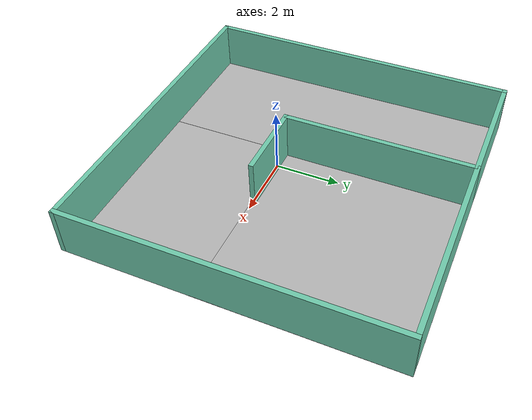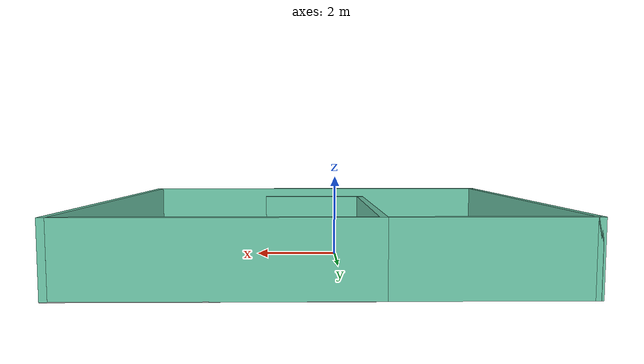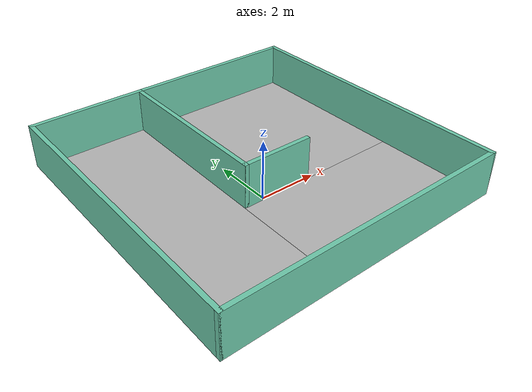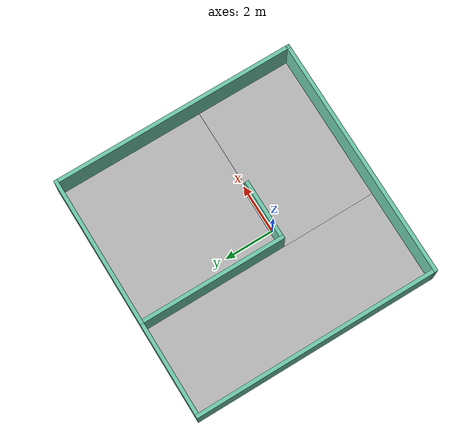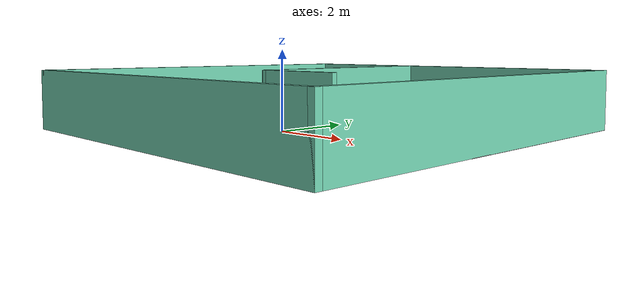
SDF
<?xml version='1.0' encoding='utf-8'?>
<sdf version="1.7">
  <model name="test_room_v2">
    <pose>0.429 0.941 0 0 -0 0</pose>
    <link name="Wall_0">
      <collision name="Wall_0_Collision">
        <geometry>
          <box>
            <size>10 0.15 1.5</size>
          </box>
        </geometry>
        <pose>0 0 0.75 0 -0 0</pose>
      </collision>
      <visual name="Wall_0_Visual">
        <pose>0 0 0.75 0 -0 0</pose>
        <geometry>
          <box>
            <size>10 0.15 1.5</size>
          </box>
        </geometry>
        <material>
          <script>
            <uri>file://media/materials/scripts/gazebo.material</uri>
            <name>Gazebo/Grey</name>
          </script>
          <ambient>0.435294 0.796078 0.67451 1</ambient>
        </material>
        <meta>
          <layer>0</layer>
        </meta>
      </visual>
      <pose>-4.925 0 0 0 -0 1.5708</pose>
    </link>
    <link name="Wall_12">
      <collision name="Wall_12_Collision">
        <geometry>
          <box>
            <size>4 0.15 1.5</size>
          </box>
        </geometry>
        <pose>0 0 0.75 0 -0 0</pose>
      </collision>
      <visual name="Wall_12_Visual">
        <pose>0 0 0.75 0 -0 0</pose>
        <geometry>
          <box>
            <size>4 0.15 1.5</size>
          </box>
        </geometry>
        <material>
          <script>
            <uri>file://media/materials/scripts/gazebo.material</uri>
            <name>Gazebo/Grey</name>
          </script>
          <ambient>0.435294 0.796078 0.67451 1</ambient>
        </material>
        <meta>
          <layer>0</layer>
        </meta>
      </visual>
      <pose>-3 4.925 0 0 -0 0</pose>
    </link>
    <link name="Wall_14">
      <collision name="Wall_14_Collision">
        <geometry>
          <box>
            <size>6 0.15 1.5</size>
          </box>
        </geometry>
        <pose>0 0 0.75 0 -0 0</pose>
      </collision>
      <visual name="Wall_14_Visual">
        <pose>0 0 0.75 0 -0 0</pose>
        <geometry>
          <box>
            <size>6 0.15 1.5</size>
          </box>
        </geometry>
        <material>
          <script>
            <uri>file://media/materials/scripts/gazebo.material</uri>
            <name>Gazebo/Grey</name>
          </script>
          <ambient>0.435294 0.796078 0.67451 1</ambient>
        </material>
        <meta>
          <layer>0</layer>
        </meta>
      </visual>
      <pose>-1.075 2 0 0 -0 -1.5708</pose>
    </link>
    <link name="Wall_16">
      <collision name="Wall_16_Collision">
        <geometry>
          <box>
            <size>6.15 0.15 1.5</size>
          </box>
        </geometry>
        <pose>0 0 0.75 0 -0 0</pose>
      </collision>
      <visual name="Wall_16_Visual">
        <pose>0 0 0.75 0 -0 0</pose>
        <geometry>
          <box>
            <size>6.15 0.15 1.5</size>
          </box>
        </geometry>
        <material>
          <script>
            <uri>file://media/materials/scripts/gazebo.material</uri>
            <name>Gazebo/Grey</name>
          </script>
          <ambient>0.435294 0.796078 0.67451 1</ambient>
        </material>
        <meta>
          <layer>0</layer>
        </meta>
      </visual>
      <pose>1.925 4.925 0 0 -0 3.14159</pose>
    </link>
    <link name="Wall_18">
      <collision name="Wall_18_Collision">
        <geometry>
          <box>
            <size>2.5 0.15 1.5</size>
          </box>
        </geometry>
        <pose>0 0 0.75 0 -0 0</pose>
      </collision>
      <visual name="Wall_18_Visual">
        <pose>0 0 0.75 0 -0 0</pose>
        <geometry>
          <box>
            <size>2.5 0.15 1.5</size>
          </box>
        </geometry>
        <material>
          <script>
            <uri>file://media/materials/scripts/gazebo.material</uri>
            <name>Gazebo/Grey</name>
          </script>
          <ambient>0.435294 0.796078 0.67451 1</ambient>
        </material>
        <meta>
          <layer>0</layer>
        </meta>
      </visual>
      <pose>0.1 -0.925 0 0 -0 0</pose>
    </link>
    <link name="Wall_4">
      <collision name="Wall_4_Collision">
        <geometry>
          <box>
            <size>10 0.15 1.5</size>
          </box>
        </geometry>
        <pose>0 0 0.75 0 -0 0</pose>
      </collision>
      <visual name="Wall_4_Visual">
        <pose>0 0 0.75 0 -0 0</pose>
        <geometry>
          <box>
            <size>10 0.15 1.5</size>
          </box>
        </geometry>
        <material>
          <script>
            <uri>file://media/materials/scripts/gazebo.material</uri>
            <name>Gazebo/Grey</name>
          </script>
          <ambient>0.435294 0.796078 0.67451 1</ambient>
        </material>
        <meta>
          <layer>0</layer>
        </meta>
      </visual>
      <pose>4.925 0 0 0 -0 -1.5708</pose>
    </link>
    <link name="Wall_6">
      <collision name="Wall_6_Collision">
        <geometry>
          <box>
            <size>10 0.15 1.5</size>
          </box>
        </geometry>
        <pose>0 0 0.75 0 -0 0</pose>
      </collision>
      <visual name="Wall_6_Visual">
        <pose>0 0 0.75 0 -0 0</pose>
        <geometry>
          <box>
            <size>10 0.15 1.5</size>
          </box>
        </geometry>
        <material>
          <script>
            <uri>file://media/materials/scripts/gazebo.material</uri>
            <name>Gazebo/Grey</name>
          </script>
          <ambient>0.435294 0.796078 0.67451 1</ambient>
        </material>
        <meta>
          <layer>0</layer>
        </meta>
      </visual>
      <pose>-0 -4.925 0 0 -0 0</pose>
    </link>
    <static>1</static>
    <link name="image_1">
      <pose>1.925 2.000 0.001 0 0 0</pose>
      <inertial>
        <mass>55.35</mass>
        <inertia>
          <ixx>166.0505</ixx>
          <ixy>0.0</ixy>
          <ixz>0.0</ixz>
          <iyy>174.4567</iyy>
          <iyz>0.0</iyz>
          <izz>340.5063</izz>
        </inertia>
      </inertial>
      <collision name="image_1_Col">
        <geometry>
          <box>
            <size>6.150 6.000 0.01</size>
          </box>
        </geometry>
        <surface>
          <friction>
            <ode>
              <mu>1.0</mu>
              <mu2>1.0</mu2>
            </ode>
          </friction>
          <contact>
            <ode>
              <kp>10000000.0</kp>
              <kd>1.0</kd>
            </ode>
          </contact>
        </surface>
      </collision>
      <visual name="image_1_Vis">
        <geometry>
          <box>
            <size>6.150 6.000 0.01</size>
          </box>
        </geometry>
        <material>
          <script>
            <uri>model://test_room_v2/materials/scripts</uri>
            <uri>model://test_room_v2/materials/textures/</uri>
            <name>image_1_Mat</name>
          </script>
        </material>
      </visual>
    </link>
    <link name="image_2">
      <pose>-3.000 0.000 0.001 0 0 0</pose>
      <inertial>
        <mass>53.83</mass>
        <inertia>
          <ixx>422.0725</ixx>
          <ixy>0.0</ixy>
          <ixz>0.0</ixz>
          <iyy>61.4115</iyy>
          <iyz>0.0</iyz>
          <izz>483.4831</izz>
        </inertia>
      </inertial>
      <collision name="image_2_Col">
        <geometry>
          <box>
            <size>3.700 9.700 0.01</size>
          </box>
        </geometry>
        <surface>
          <friction>
            <ode>
              <mu>1.0</mu>
              <mu2>1.0</mu2>
            </ode>
          </friction>
          <contact>
            <ode>
              <kp>10000000.0</kp>
              <kd>1.0</kd>
            </ode>
          </contact>
        </surface>
      </collision>
      <visual name="image_2_Vis">
        <geometry>
          <box>
            <size>3.700 9.700 0.01</size>
          </box>
        </geometry>
        <material>
          <script>
            <uri>model://test_room_v2/materials/scripts</uri>
            <uri>model://test_room_v2/materials/textures/</uri>
            <name>image_2_Mat</name>
          </script>
        </material>
      </visual>
    </link>
    <link name="image_3">
      <pose>1.850 -2.925 0.001 0 0 0</pose>
      <inertial>
        <mass>34.65</mass>
        <inertia>
          <ixx>42.8003</ixx>
          <ixy>0.0</ixy>
          <ixz>0.0</ixz>
          <iyy>103.9503</iyy>
          <iyz>0.0</iyz>
          <izz>146.75</izz>
        </inertia>
      </inertial>
      <collision name="image_3_Col">
        <geometry>
          <box>
            <size>6.000 3.850 0.01</size>
          </box>
        </geometry>
        <surface>
          <friction>
            <ode>
              <mu>1.0</mu>
              <mu2>1.0</mu2>
            </ode>
          </friction>
          <contact>
            <ode>
              <kp>10000000.0</kp>
              <kd>1.0</kd>
            </ode>
          </contact>
        </surface>
      </collision>
      <visual name="image_3_Vis">
        <geometry>
          <box>
            <size>6.000 3.850 0.01</size>
          </box>
        </geometry>
        <material>
          <script>
            <uri>model://test_room_v2/materials/scripts</uri>
            <uri>model://test_room_v2/materials/textures/</uri>
            <name>image_3_Mat</name>
          </script>
        </material>
      </visual>
    </link>
  </model>
</sdf>
